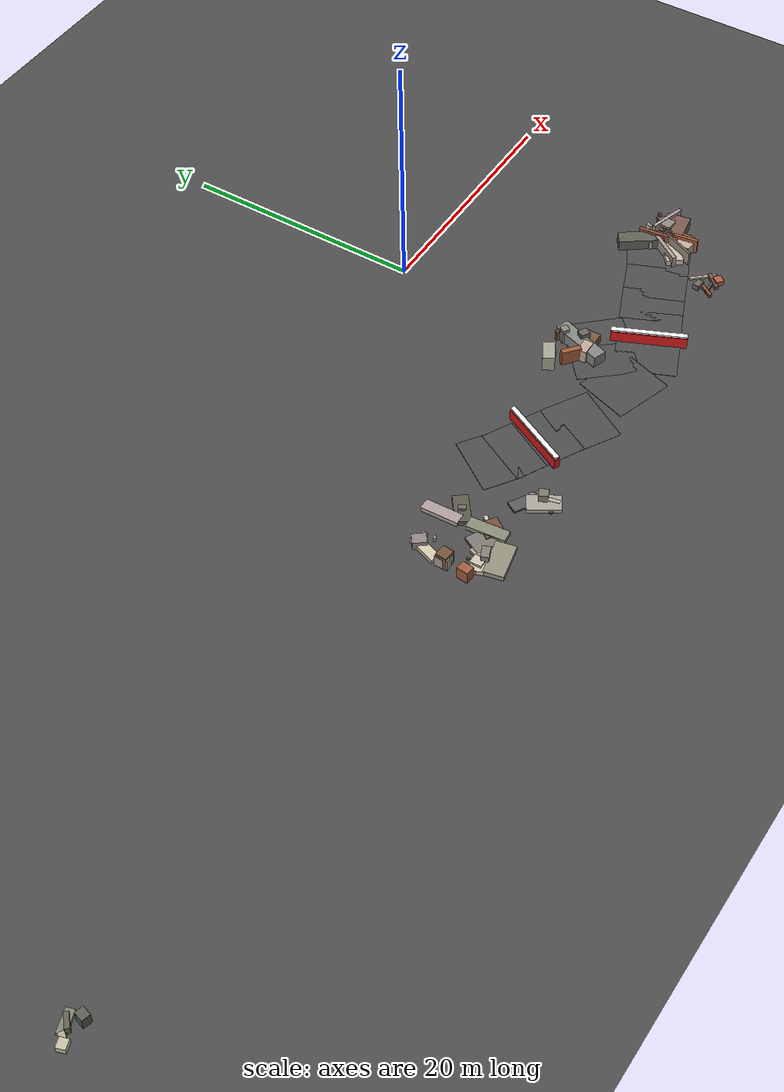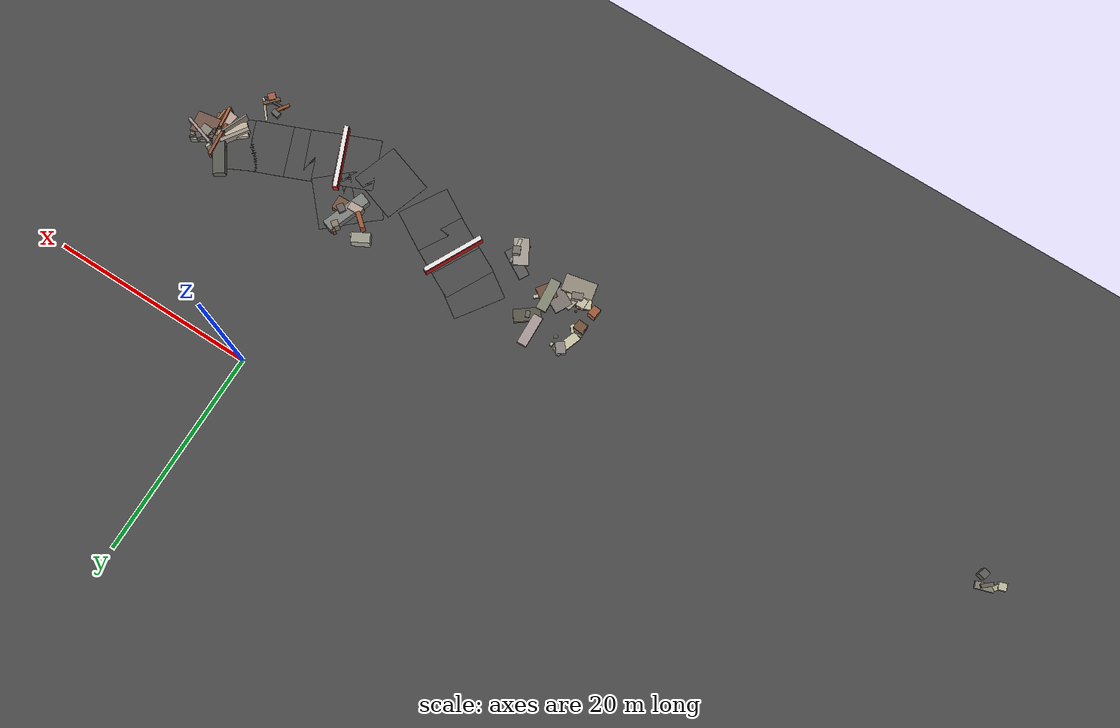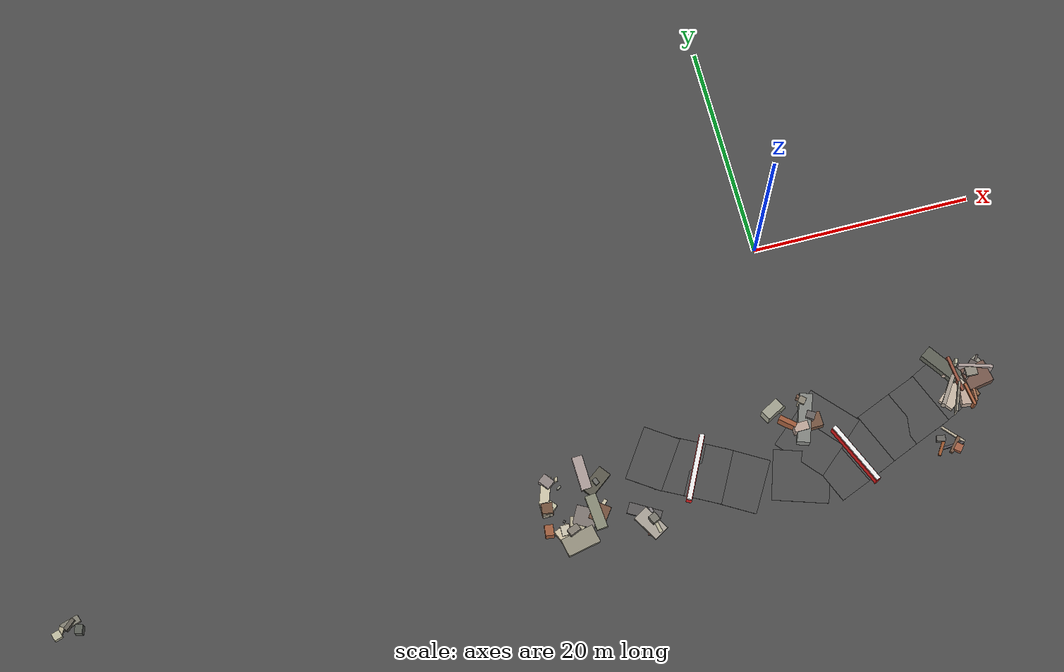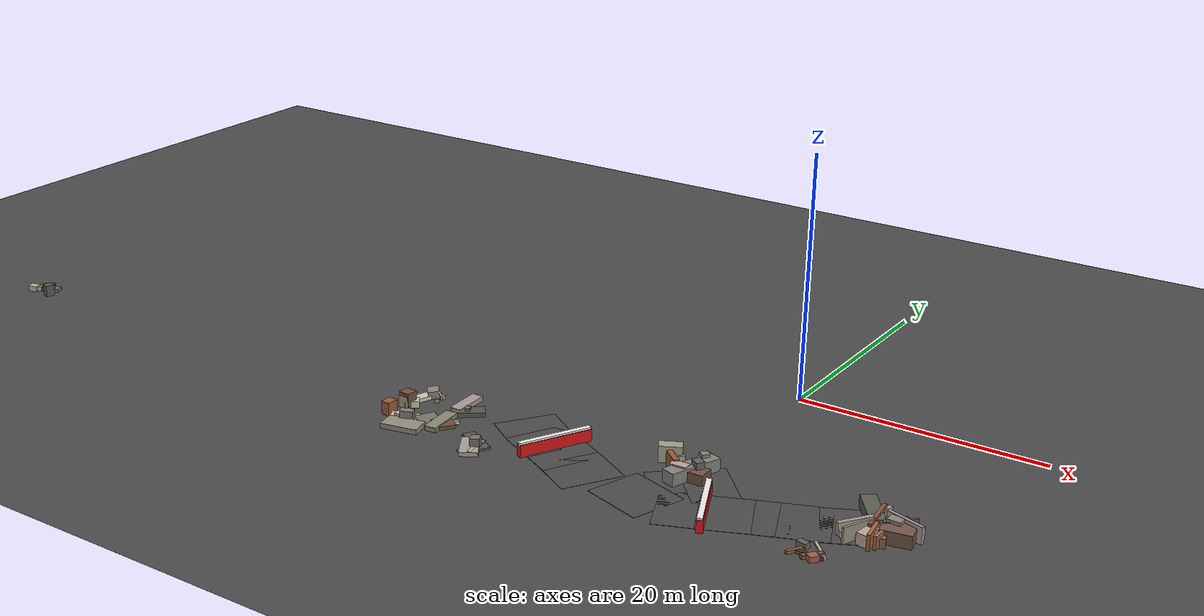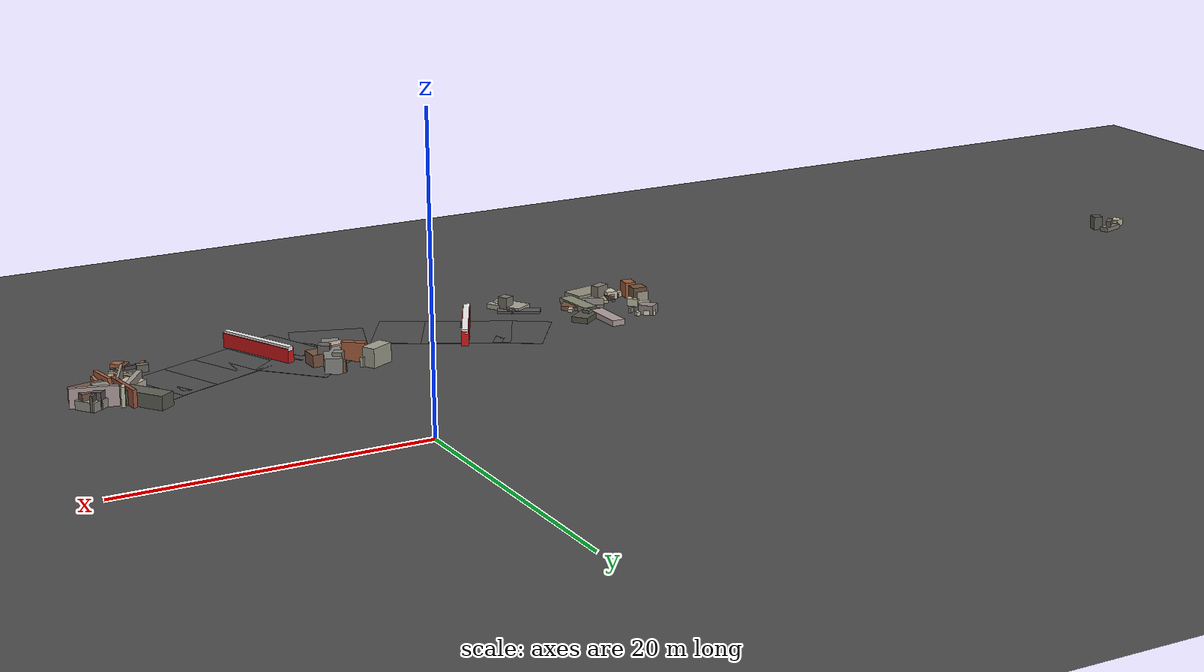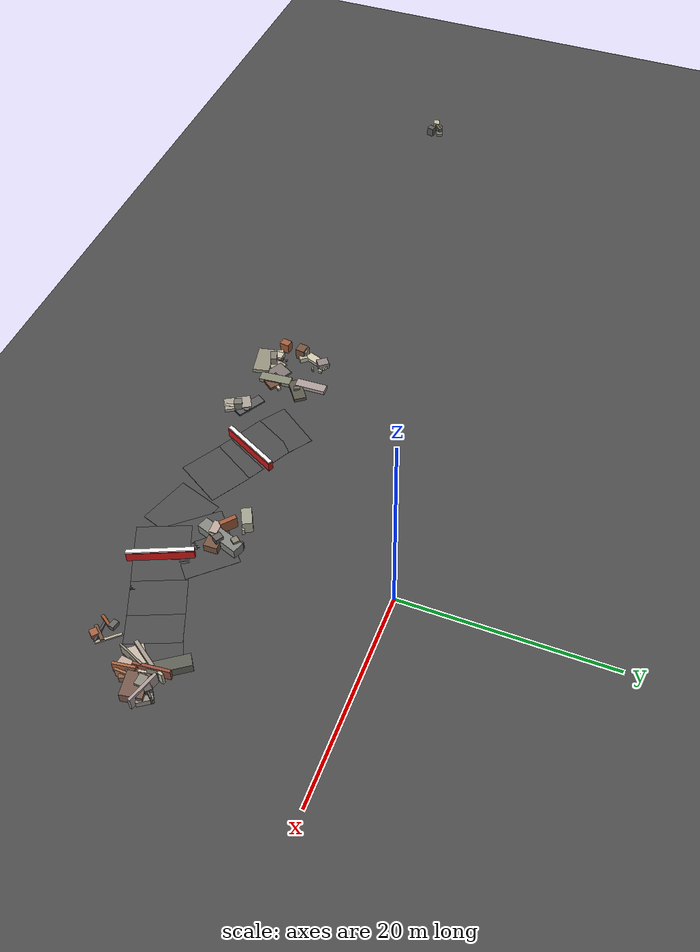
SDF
<sdf version="1.6">
 <world name="navitas_arena">
  <model name="ground_plane">
   <static>true</static>
   <link name="link">
    <collision name="collision">
     <geometry><plane><normal>0 0 1</normal><size>400 400</size></plane></geometry>
     <surface><friction><ode><mu>0.800</mu><mu2>0.800</mu2></ode></friction></surface>
    </collision>
    <visual name="visual">
     <cast_shadows>false</cast_shadows>
     <geometry><plane><normal>0 0 1</normal><size>400 400</size></plane></geometry>
     <material>
      <specular>0.04 0.04 0.04 1</specular>
      <script>
       <uri>file://media/materials/scripts/navitas_asphalt.material</uri>
       <name>Navitas/RealArenaAsphalt</name>
      </script>
     </material>
    </visual>
   </link>
  </model>
  <model name="deb_kolay_69">
   <static>true</static>
   <pose>-66.534 -19.022 0.000 0 0 0</pose>
   <link name="link">
    <collision name="col_0">
     <pose>0.385 0.794 0.359 0.000 0.000 0.717</pose>
     <geometry><box><size>1.131 0.352 0.719</size></box></geometry>
    </collision>
    <visual name="vis_0">
     <pose>0.385 0.794 0.359 0.000 0.000 0.717</pose>
     <geometry><box><size>1.131 0.352 0.719</size></box></geometry>
     <material>
      <ambient>0.37 0.36 0.32 1</ambient>
      <diffuse>0.40 0.38 0.34 1</diffuse>
      <specular>0.05 0.05 0.045 1</specular>
     </material>
    </visual>
    <collision name="col_1">
     <pose>-0.459 0.506 0.189 0.000 0.000 0.961</pose>
     <geometry><box><size>0.647 0.438 0.377</size></box></geometry>
    </collision>
    <visual name="vis_1">
     <pose>-0.459 0.506 0.189 0.000 0.000 0.961</pose>
     <geometry><box><size>0.647 0.438 0.377</size></box></geometry>
     <material>
      <ambient>0.65 0.62 0.52 1</ambient>
      <diffuse>0.70 0.67 0.56 1</diffuse>
      <specular>0.05 0.05 0.045 1</specular>
     </material>
    </visual>
    <collision name="col_2">
     <pose>-0.843 0.154 0.254 0.000 0.000 0.308</pose>
     <geometry><box><size>0.747 0.685 0.507</size></box></geometry>
    </collision>
    <visual name="vis_2">
     <pose>-0.843 0.154 0.254 0.000 0.000 0.308</pose>
     <geometry><box><size>0.747 0.685 0.507</size></box></geometry>
     <material>
      <ambient>0.70 0.70 0.59 1</ambient>
      <diffuse>0.76 0.75 0.64 1</diffuse>
      <specular>0.05 0.05 0.045 1</specular>
     </material>
    </visual>
    <collision name="col_3">
     <pose>1.124 0.130 0.493 0.000 0.000 1.282</pose>
     <geometry><box><size>0.758 0.675 0.986</size></box></geometry>
    </collision>
    <visual name="vis_3">
     <pose>1.124 0.130 0.493 0.000 0.000 1.282</pose>
     <geometry><box><size>0.758 0.675 0.986</size></box></geometry>
     <material>
      <ambient>0.33 0.34 0.31 1</ambient>
      <diffuse>0.36 0.37 0.34 1</diffuse>
      <specular>0.05 0.05 0.045 1</specular>
     </material>
    </visual>
    <collision name="col_4">
     <pose>0.436 0.968 0.167 0.000 0.000 0.304</pose>
     <geometry><box><size>1.716 0.656 0.333</size></box></geometry>
    </collision>
    <visual name="vis_4">
     <pose>0.436 0.968 0.167 0.000 0.000 0.304</pose>
     <geometry><box><size>1.716 0.656 0.333</size></box></geometry>
     <material>
      <ambient>0.47 0.46 0.41 1</ambient>
      <diffuse>0.51 0.50 0.45 1</diffuse>
      <specular>0.05 0.05 0.045 1</specular>
     </material>
    </visual>
   </link>
  </model>
  <model name="road_orta_1_1">
   <static>true</static>
   <pose>-7.198 -20.320 0.040 0 0 2.611</pose>
   <link name="link">
    <collision name="col"><geometry><box><size>4.141 5.000 0.020</size></box></geometry></collision>
    <visual name="vis">
     <geometry><box><size>4.141 5.000 0.020</size></box></geometry>
     <material>
      <specular>0.04 0.04 0.04 1</specular>
      <script>
       <uri>file://media/materials/scripts/navitas_asphalt.material</uri>
       <name>Navitas/RealArenaAsphalt</name>
      </script>
     </material>
    </visual>
   </link>
  </model>
  <model name="road_orta_1_2">
   <static>true</static>
   <pose>-9.670 -18.930 0.040 0 0 2.654</pose>
   <link name="link">
    <collision name="col"><geometry><box><size>3.332 5.000 0.020</size></box></geometry></collision>
    <visual name="vis">
     <geometry><box><size>3.332 5.000 0.020</size></box></geometry>
     <material>
      <specular>0.04 0.04 0.04 1</specular>
      <script>
       <uri>file://media/materials/scripts/navitas_asphalt.material</uri>
       <name>Navitas/RealArenaAsphalt</name>
      </script>
     </material>
    </visual>
   </link>
  </model>
  <model name="road_orta_1_3">
   <static>true</static>
   <pose>-11.906 -17.758 0.040 0 0 2.664</pose>
   <link name="link">
    <collision name="col"><geometry><box><size>3.518 5.000 0.020</size></box></geometry></collision>
    <visual name="vis">
     <geometry><box><size>3.518 5.000 0.020</size></box></geometry>
     <material>
      <specular>0.04 0.04 0.04 1</specular>
      <script>
       <uri>file://media/materials/scripts/navitas_asphalt.material</uri>
       <name>Navitas/RealArenaAsphalt</name>
      </script>
     </material>
    </visual>
   </link>
  </model>
  <model name="road_orta_1_4">
   <static>true</static>
   <pose>-14.068 -16.469 0.040 0 0 2.539</pose>
   <link name="link">
    <collision name="col"><geometry><box><size>3.324 5.000 0.020</size></box></geometry></collision>
    <visual name="vis">
     <geometry><box><size>3.324 5.000 0.020</size></box></geometry>
     <material>
      <specular>0.04 0.04 0.04 1</specular>
      <script>
       <uri>file://media/materials/scripts/navitas_asphalt.material</uri>
       <name>Navitas/RealArenaAsphalt</name>
      </script>
     </material>
    </visual>
   </link>
  </model>
  <model name="road_orta_2_0">
   <static>true</static>
   <pose>-1.967 -21.250 0.040 0 0 1.255</pose>
   <link name="link">
    <collision name="col"><geometry><box><size>4.582 5.000 0.020</size></box></geometry></collision>
    <visual name="vis">
     <geometry><box><size>4.582 5.000 0.020</size></box></geometry>
     <material>
      <specular>0.04 0.04 0.04 1</specular>
      <script>
       <uri>file://media/materials/scripts/navitas_asphalt.material</uri>
       <name>Navitas/RealArenaAsphalt</name>
      </script>
     </material>
    </visual>
   </link>
  </model>
  <model name="road_orta_2_1">
   <static>true</static>
   <pose>-0.460 -18.696 0.040 0 0 0.710</pose>
   <link name="link">
    <collision name="col"><geometry><box><size>3.367 5.000 0.020</size></box></geometry></collision>
    <visual name="vis">
     <geometry><box><size>3.367 5.000 0.020</size></box></geometry>
     <material>
      <specular>0.04 0.04 0.04 1</specular>
      <script>
       <uri>file://media/materials/scripts/navitas_asphalt.material</uri>
       <name>Navitas/RealArenaAsphalt</name>
      </script>
     </material>
    </visual>
   </link>
  </model>
  <model name="road_orta_2_2">
   <static>true</static>
   <pose>1.478 -16.984 0.040 0 0 0.736</pose>
   <link name="link">
    <collision name="col"><geometry><box><size>3.606 5.000 0.020</size></box></geometry></collision>
    <visual name="vis">
     <geometry><box><size>3.606 5.000 0.020</size></box></geometry>
     <material>
      <specular>0.04 0.04 0.04 1</specular>
      <script>
       <uri>file://media/materials/scripts/navitas_asphalt.material</uri>
       <name>Navitas/RealArenaAsphalt</name>
      </script>
     </material>
    </visual>
   </link>
  </model>
  <model name="road_orta_3_1">
   <static>true</static>
   <pose>1.786 -21.236 0.040 0 0 0.392</pose>
   <link name="link">
    <collision name="col"><geometry><box><size>3.837 5.000 0.020</size></box></geometry></collision>
    <visual name="vis">
     <geometry><box><size>3.837 5.000 0.020</size></box></geometry>
     <material>
      <specular>0.04 0.04 0.04 1</specular>
      <script>
       <uri>file://media/materials/scripts/navitas_asphalt.material</uri>
       <name>Navitas/RealArenaAsphalt</name>
      </script>
     </material>
    </visual>
   </link>
  </model>
  <model name="road_orta_3_2">
   <static>true</static>
   <pose>4.474 -20.087 0.040 0 0 0.416</pose>
   <link name="link">
    <collision name="col"><geometry><box><size>3.809 5.000 0.020</size></box></geometry></collision>
    <visual name="vis">
     <geometry><box><size>3.809 5.000 0.020</size></box></geometry>
     <material>
      <specular>0.04 0.04 0.04 1</specular>
      <script>
       <uri>file://media/materials/scripts/navitas_asphalt.material</uri>
       <name>Navitas/RealArenaAsphalt</name>
      </script>
     </material>
    </visual>
   </link>
  </model>
  <model name="road_orta_3_3">
   <static>true</static>
   <pose>6.998 -19.002 0.040 0 0 0.395</pose>
   <link name="link">
    <collision name="col"><geometry><box><size>3.487 5.000 0.020</size></box></geometry></collision>
    <visual name="vis">
     <geometry><box><size>3.487 5.000 0.020</size></box></geometry>
     <material>
      <specular>0.04 0.04 0.04 1</specular>
      <script>
       <uri>file://media/materials/scripts/navitas_asphalt.material</uri>
       <name>Navitas/RealArenaAsphalt</name>
      </script>
     </material>
    </visual>
   </link>
  </model>
  <model name="road_orta_3_4">
   <static>true</static>
   <pose>9.476 -17.986 0.040 0 0 0.383</pose>
   <link name="link">
    <collision name="col"><geometry><box><size>3.669 5.000 0.020</size></box></geometry></collision>
    <visual name="vis">
     <geometry><box><size>3.669 5.000 0.020</size></box></geometry>
     <material>
      <specular>0.04 0.04 0.04 1</specular>
      <script>
       <uri>file://media/materials/scripts/navitas_asphalt.material</uri>
       <name>Navitas/RealArenaAsphalt</name>
      </script>
     </material>
    </visual>
   </link>
  </model>
  <model name="road_orta_3_5">
   <static>true</static>
   <pose>11.907 -16.896 0.040 0 0 0.463</pose>
   <link name="link">
    <collision name="col"><geometry><box><size>3.463 5.000 0.020</size></box></geometry></collision>
    <visual name="vis">
     <geometry><box><size>3.463 5.000 0.020</size></box></geometry>
     <material>
      <specular>0.04 0.04 0.04 1</specular>
      <script>
       <uri>file://media/materials/scripts/navitas_asphalt.material</uri>
       <name>Navitas/RealArenaAsphalt</name>
      </script>
     </material>
    </visual>
   </link>
  </model>
  <model name="bar_orta_1">
   <static>true</static>
   <pose>-10.744 -18.360 0.500 0 0 4.248</pose>
   <link name="link">
    <collision name="col"><geometry><box><size>6.000 0.500 1.000</size></box></geometry></collision>
    <visual name="vis">
     <geometry><box><size>6.000 0.500 1.000</size></box></geometry>
     <material>
      <ambient>0.85 0.10 0.10 1</ambient>
      <diffuse>0.85 0.10 0.10 1</diffuse>
      <specular>0.04 0.04 0.04 1</specular>
     </material>
    </visual>
   </link>
  </model>
  <model name="bar_orta_1b">
   <static>true</static>
   <pose>-10.744 -18.360 1.000 0 0 4.248</pose>
   <link name="link">
    <collision name="col"><geometry><box><size>6.000 0.400 0.300</size></box></geometry></collision>
    <visual name="vis">
     <geometry><box><size>6.000 0.400 0.300</size></box></geometry>
     <material>
      <ambient>0.95 0.95 0.95 1</ambient>
      <diffuse>0.95 0.95 0.95 1</diffuse>
      <specular>0.04 0.04 0.04 1</specular>
     </material>
    </visual>
   </link>
  </model>
  <model name="bar_orta_3">
   <static>true</static>
   <pose>3.143 -20.675 0.500 0 0 1.978</pose>
   <link name="link">
    <collision name="col"><geometry><box><size>6.000 0.500 1.000</size></box></geometry></collision>
    <visual name="vis">
     <geometry><box><size>6.000 0.500 1.000</size></box></geometry>
     <material>
      <ambient>0.85 0.10 0.10 1</ambient>
      <diffuse>0.85 0.10 0.10 1</diffuse>
      <specular>0.04 0.04 0.04 1</specular>
     </material>
    </visual>
   </link>
  </model>
  <model name="bar_orta_3b">
   <static>true</static>
   <pose>3.143 -20.675 1.000 0 0 1.978</pose>
   <link name="link">
    <collision name="col"><geometry><box><size>6.000 0.400 0.300</size></box></geometry></collision>
    <visual name="vis">
     <geometry><box><size>6.000 0.400 0.300</size></box></geometry>
     <material>
      <ambient>0.95 0.95 0.95 1</ambient>
      <diffuse>0.95 0.95 0.95 1</diffuse>
      <specular>0.04 0.04 0.04 1</specular>
     </material>
    </visual>
   </link>
  </model>
  <model name="blk_orta_3_0_0">
   <static>true</static>
   <pose>14.276 -16.263 0.000 0 0 0</pose>
   <link name="link">
    <collision name="col_0">
     <pose>-0.991 -1.757 0.649 0.000 0.000 1.174</pose>
     <geometry><box><size>2.715 0.166 1.298</size></box></geometry>
    </collision>
    <visual name="vis_0">
     <pose>-0.991 -1.757 0.649 0.000 0.000 1.174</pose>
     <geometry><box><size>2.715 0.166 1.298</size></box></geometry>
     <material>
      <ambient>0.57 0.53 0.48 1</ambient>
      <diffuse>0.61 0.58 0.52 1</diffuse>
      <specular>0.05 0.05 0.045 1</specular>
     </material>
    </visual>
    <collision name="col_1">
     <pose>1.030 0.545 0.524 0.000 0.000 0.867</pose>
     <geometry><box><size>2.583 0.171 1.048</size></box></geometry>
    </collision>
    <visual name="vis_1">
     <pose>1.030 0.545 0.524 0.000 0.000 0.867</pose>
     <geometry><box><size>2.583 0.171 1.048</size></box></geometry>
     <material>
      <ambient>0.34 0.32 0.30 1</ambient>
      <diffuse>0.37 0.34 0.32 1</diffuse>
      <specular>0.05 0.05 0.045 1</specular>
     </material>
    </visual>
    <collision name="col_2">
     <pose>0.139 -0.960 0.420 0.000 0.000 0.569</pose>
     <geometry><box><size>1.317 0.645 0.839</size></box></geometry>
    </collision>
    <visual name="vis_2">
     <pose>0.139 -0.960 0.420 0.000 0.000 0.569</pose>
     <geometry><box><size>1.317 0.645 0.839</size></box></geometry>
     <material>
      <ambient>0.41 0.30 0.24 1</ambient>
      <diffuse>0.44 0.33 0.26 1</diffuse>
      <specular>0.05 0.05 0.045 1</specular>
     </material>
    </visual>
    <collision name="col_3">
     <pose>-1.227 0.566 0.393 0.000 0.000 2.454</pose>
     <geometry><box><size>0.602 0.409 0.786</size></box></geometry>
    </collision>
    <visual name="vis_3">
     <pose>-1.227 0.566 0.393 0.000 0.000 2.454</pose>
     <geometry><box><size>0.602 0.409 0.786</size></box></geometry>
     <material>
      <ambient>0.71 0.64 0.58 1</ambient>
      <diffuse>0.77 0.69 0.63 1</diffuse>
      <specular>0.05 0.05 0.045 1</specular>
     </material>
    </visual>
    <collision name="col_4">
     <pose>1.254 -0.239 0.516 0.000 0.000 1.739</pose>
     <geometry><box><size>2.000 2.285 1.031</size></box></geometry>
    </collision>
    <visual name="vis_4">
     <pose>1.254 -0.239 0.516 0.000 0.000 1.739</pose>
     <geometry><box><size>2.000 2.285 1.031</size></box></geometry>
     <material>
      <ambient>0.43 0.33 0.28 1</ambient>
      <diffuse>0.47 0.35 0.30 1</diffuse>
      <specular>0.05 0.05 0.045 1</specular>
     </material>
    </visual>
    <collision name="col_5">
     <pose>0.622 -0.284 0.391 0.000 0.000 0.413</pose>
     <geometry><box><size>0.488 0.356 0.782</size></box></geometry>
    </collision>
    <visual name="vis_5">
     <pose>0.622 -0.284 0.391 0.000 0.000 0.413</pose>
     <geometry><box><size>0.488 0.356 0.782</size></box></geometry>
     <material>
      <ambient>0.44 0.34 0.25 1</ambient>
      <diffuse>0.47 0.37 0.27 1</diffuse>
      <specular>0.05 0.05 0.045 1</specular>
     </material>
    </visual>
    <collision name="col_6">
     <pose>-0.211 1.364 0.671 0.000 0.000 1.222</pose>
     <geometry><box><size>0.467 0.242 1.341</size></box></geometry>
    </collision>
    <visual name="vis_6">
     <pose>-0.211 1.364 0.671 0.000 0.000 1.222</pose>
     <geometry><box><size>0.467 0.242 1.341</size></box></geometry>
     <material>
      <ambient>0.69 0.68 0.59 1</ambient>
      <diffuse>0.75 0.74 0.64 1</diffuse>
      <specular>0.05 0.05 0.045 1</specular>
     </material>
    </visual>
    <collision name="col_7">
     <pose>-1.037 -1.173 0.276 0.000 0.000 0.678</pose>
     <geometry><box><size>2.904 1.403 0.551</size></box></geometry>
    </collision>
    <visual name="vis_7">
     <pose>-1.037 -1.173 0.276 0.000 0.000 0.678</pose>
     <geometry><box><size>2.904 1.403 0.551</size></box></geometry>
     <material>
      <ambient>0.73 0.68 0.61 1</ambient>
      <diffuse>0.79 0.73 0.66 1</diffuse>
      <specular>0.05 0.05 0.045 1</specular>
     </material>
    </visual>
    <collision name="col_8">
     <pose>-1.401 1.471 0.466 0.000 0.000 2.181</pose>
     <geometry><box><size>3.732 1.156 0.933</size></box></geometry>
    </collision>
    <visual name="vis_8">
     <pose>-1.401 1.471 0.466 0.000 0.000 2.181</pose>
     <geometry><box><size>3.732 1.156 0.933</size></box></geometry>
     <material>
      <ambient>0.34 0.35 0.32 1</ambient>
      <diffuse>0.37 0.38 0.34 1</diffuse>
      <specular>0.05 0.05 0.045 1</specular>
     </material>
    </visual>
    <collision name="col_9">
     <pose>0.086 -1.825 0.619 0.000 0.000 1.714</pose>
     <geometry><box><size>2.069 0.247 1.238</size></box></geometry>
    </collision>
    <visual name="vis_9">
     <pose>0.086 -1.825 0.619 0.000 0.000 1.714</pose>
     <geometry><box><size>2.069 0.247 1.238</size></box></geometry>
     <material>
      <ambient>0.63 0.37 0.24 1</ambient>
      <diffuse>0.68 0.40 0.26 1</diffuse>
      <specular>0.05 0.05 0.045 1</specular>
     </material>
    </visual>
   </link>
  </model>
  <model name="blk_orta_3_0_3">
   <static>true</static>
   <pose>14.219 -16.608 0.000 0 0 0</pose>
   <link name="link">
    <collision name="col_0">
     <pose>-0.189 -1.370 0.468 0.000 0.000 1.437</pose>
     <geometry><box><size>1.699 0.884 0.936</size></box></geometry>
    </collision>
    <visual name="vis_0">
     <pose>-0.189 -1.370 0.468 0.000 0.000 1.437</pose>
     <geometry><box><size>1.699 0.884 0.936</size></box></geometry>
     <material>
      <ambient>0.71 0.62 0.56 1</ambient>
      <diffuse>0.76 0.67 0.61 1</diffuse>
      <specular>0.05 0.05 0.045 1</specular>
     </material>
    </visual>
    <collision name="col_1">
     <pose>1.172 0.698 0.302 0.000 0.000 0.599</pose>
     <geometry><box><size>2.528 1.462 0.603</size></box></geometry>
    </collision>
    <visual name="vis_1">
     <pose>1.172 0.698 0.302 0.000 0.000 0.599</pose>
     <geometry><box><size>2.528 1.462 0.603</size></box></geometry>
     <material>
      <ambient>0.53 0.53 0.49 1</ambient>
      <diffuse>0.58 0.57 0.53 1</diffuse>
      <specular>0.05 0.05 0.045 1</specular>
     </material>
    </visual>
    <collision name="col_2">
     <pose>-1.495 -0.533 0.510 0.000 0.000 0.974</pose>
     <geometry><box><size>2.899 0.343 1.020</size></box></geometry>
    </collision>
    <visual name="vis_2">
     <pose>-1.495 -0.533 0.510 0.000 0.000 0.974</pose>
     <geometry><box><size>2.899 0.343 1.020</size></box></geometry>
     <material>
      <ambient>0.60 0.57 0.52 1</ambient>
      <diffuse>0.65 0.61 0.56 1</diffuse>
      <specular>0.05 0.05 0.045 1</specular>
     </material>
    </visual>
    <collision name="col_3">
     <pose>1.415 0.888 0.661 0.000 0.000 -0.300</pose>
     <geometry><box><size>3.041 0.269 1.323</size></box></geometry>
    </collision>
    <visual name="vis_3">
     <pose>1.415 0.888 0.661 0.000 0.000 -0.300</pose>
     <geometry><box><size>3.041 0.269 1.323</size></box></geometry>
     <material>
      <ambient>0.63 0.58 0.56 1</ambient>
      <diffuse>0.68 0.62 0.61 1</diffuse>
      <specular>0.05 0.05 0.045 1</specular>
     </material>
    </visual>
    <collision name="col_4">
     <pose>0.887 0.518 0.647 0.000 0.000 1.524</pose>
     <geometry><box><size>0.812 1.023 1.294</size></box></geometry>
    </collision>
    <visual name="vis_4">
     <pose>0.887 0.518 0.647 0.000 0.000 1.524</pose>
     <geometry><box><size>0.812 1.023 1.294</size></box></geometry>
     <material>
      <ambient>0.51 0.50 0.46 1</ambient>
      <diffuse>0.56 0.54 0.49 1</diffuse>
      <specular>0.05 0.05 0.045 1</specular>
     </material>
    </visual>
    <collision name="col_5">
     <pose>0.915 0.864 0.550 0.000 0.000 0.818</pose>
     <geometry><box><size>1.592 0.636 1.101</size></box></geometry>
    </collision>
    <visual name="vis_5">
     <pose>0.915 0.864 0.550 0.000 0.000 0.818</pose>
     <geometry><box><size>1.592 0.636 1.101</size></box></geometry>
     <material>
      <ambient>0.36 0.34 0.32 1</ambient>
      <diffuse>0.39 0.36 0.35 1</diffuse>
      <specular>0.05 0.05 0.045 1</specular>
     </material>
    </visual>
    <collision name="col_6">
     <pose>0.845 -1.387 0.369 0.000 0.000 0.363</pose>
     <geometry><box><size>0.429 0.521 0.739</size></box></geometry>
    </collision>
    <visual name="vis_6">
     <pose>0.845 -1.387 0.369 0.000 0.000 0.363</pose>
     <geometry><box><size>0.429 0.521 0.739</size></box></geometry>
     <material>
      <ambient>0.50 0.37 0.26 1</ambient>
      <diffuse>0.54 0.39 0.28 1</diffuse>
      <specular>0.05 0.05 0.045 1</specular>
     </material>
    </visual>
    <collision name="col_7">
     <pose>-0.520 0.669 0.583 0.000 0.000 1.676</pose>
     <geometry><box><size>3.301 0.276 1.166</size></box></geometry>
    </collision>
    <visual name="vis_7">
     <pose>-0.520 0.669 0.583 0.000 0.000 1.676</pose>
     <geometry><box><size>3.301 0.276 1.166</size></box></geometry>
     <material>
      <ambient>0.56 0.31 0.23 1</ambient>
      <diffuse>0.60 0.33 0.25 1</diffuse>
      <specular>0.05 0.05 0.045 1</specular>
     </material>
    </visual>
    <collision name="col_8">
     <pose>0.645 -0.960 0.512 0.000 0.000 1.525</pose>
     <geometry><box><size>2.298 0.228 1.024</size></box></geometry>
    </collision>
    <visual name="vis_8">
     <pose>0.645 -0.960 0.512 0.000 0.000 1.525</pose>
     <geometry><box><size>2.298 0.228 1.024</size></box></geometry>
     <material>
      <ambient>0.61 0.41 0.30 1</ambient>
      <diffuse>0.66 0.44 0.32 1</diffuse>
      <specular>0.05 0.05 0.045 1</specular>
     </material>
    </visual>
   </link>
  </model>
  <model name="deb_orta_16">
   <static>true</static>
   <pose>11.632 -21.586 0.000 0 0 0</pose>
   <link name="link">
    <collision name="col_0">
     <pose>-0.019 -0.355 0.117 0.000 0.000 0.049</pose>
     <geometry><box><size>2.212 0.209 0.234</size></box></geometry>
    </collision>
    <visual name="vis_0">
     <pose>-0.019 -0.355 0.117 0.000 0.000 0.049</pose>
     <geometry><box><size>2.212 0.209 0.234</size></box></geometry>
     <material>
      <ambient>0.30 0.29 0.30 1</ambient>
      <diffuse>0.33 0.31 0.33 1</diffuse>
      <specular>0.05 0.05 0.045 1</specular>
     </material>
    </visual>
    <collision name="col_1">
     <pose>0.286 -0.340 0.151 0.000 0.000 0.845</pose>
     <geometry><box><size>1.620 0.318 0.301</size></box></geometry>
    </collision>
    <visual name="vis_1">
     <pose>0.286 -0.340 0.151 0.000 0.000 0.845</pose>
     <geometry><box><size>1.620 0.318 0.301</size></box></geometry>
     <material>
      <ambient>0.43 0.32 0.24 1</ambient>
      <diffuse>0.46 0.34 0.26 1</diffuse>
      <specular>0.05 0.05 0.045 1</specular>
     </material>
    </visual>
    <collision name="col_2">
     <pose>-0.978 -0.385 0.126 0.000 0.000 0.990</pose>
     <geometry><box><size>1.289 0.265 0.252</size></box></geometry>
    </collision>
    <visual name="vis_2">
     <pose>-0.978 -0.385 0.126 0.000 0.000 0.990</pose>
     <geometry><box><size>1.289 0.265 0.252</size></box></geometry>
     <material>
      <ambient>0.57 0.31 0.17 1</ambient>
      <diffuse>0.61 0.34 0.18 1</diffuse>
      <specular>0.05 0.05 0.045 1</specular>
     </material>
    </visual>
    <collision name="col_3">
     <pose>0.409 0.624 0.078 0.000 0.000 -0.846</pose>
     <geometry><box><size>2.338 0.217 0.156</size></box></geometry>
    </collision>
    <visual name="vis_3">
     <pose>0.409 0.624 0.078 0.000 0.000 -0.846</pose>
     <geometry><box><size>2.338 0.217 0.156</size></box></geometry>
     <material>
      <ambient>0.69 0.66 0.58 1</ambient>
      <diffuse>0.75 0.71 0.62 1</diffuse>
      <specular>0.05 0.05 0.045 1</specular>
     </material>
    </visual>
    <collision name="col_4">
     <pose>-0.797 0.472 0.238 0.000 0.000 -0.192</pose>
     <geometry><box><size>0.766 0.523 0.476</size></box></geometry>
    </collision>
    <visual name="vis_4">
     <pose>-0.797 0.472 0.238 0.000 0.000 -0.192</pose>
     <geometry><box><size>0.766 0.523 0.476</size></box></geometry>
     <material>
      <ambient>0.38 0.37 0.35 1</ambient>
      <diffuse>0.41 0.40 0.38 1</diffuse>
      <specular>0.05 0.05 0.045 1</specular>
     </material>
    </visual>
    <collision name="col_5">
     <pose>0.485 -0.695 0.222 0.000 0.000 -0.710</pose>
     <geometry><box><size>0.666 0.721 0.443</size></box></geometry>
    </collision>
    <visual name="vis_5">
     <pose>0.485 -0.695 0.222 0.000 0.000 -0.710</pose>
     <geometry><box><size>0.666 0.721 0.443</size></box></geometry>
     <material>
      <ambient>0.60 0.36 0.25 1</ambient>
      <diffuse>0.65 0.38 0.27 1</diffuse>
      <specular>0.05 0.05 0.045 1</specular>
     </material>
    </visual>
   </link>
  </model>
  <model name="deb_orta_27">
   <static>true</static>
   <pose>-21.936 -20.380 0.000 0 0 0</pose>
   <link name="link">
    <collision name="col_0">
     <pose>0.825 0.324 0.114 0.000 0.000 -0.485</pose>
     <geometry><box><size>1.935 1.730 0.228</size></box></geometry>
    </collision>
    <visual name="vis_0">
     <pose>0.825 0.324 0.114 0.000 0.000 -0.485</pose>
     <geometry><box><size>1.935 1.730 0.228</size></box></geometry>
     <material>
      <ambient>0.46 0.44 0.42 1</ambient>
      <diffuse>0.50 0.47 0.45 1</diffuse>
      <specular>0.05 0.05 0.045 1</specular>
     </material>
    </visual>
    <collision name="col_1">
     <pose>-0.494 -0.711 0.501 0.000 0.000 0.390</pose>
     <geometry><box><size>1.038 0.637 1.002</size></box></geometry>
    </collision>
    <visual name="vis_1">
     <pose>-0.494 -0.711 0.501 0.000 0.000 0.390</pose>
     <geometry><box><size>1.038 0.637 1.002</size></box></geometry>
     <material>
      <ambient>0.48 0.45 0.42 1</ambient>
      <diffuse>0.52 0.49 0.45 1</diffuse>
      <specular>0.05 0.05 0.045 1</specular>
     </material>
    </visual>
    <collision name="col_2">
     <pose>-0.059 -0.323 0.112 0.000 0.000 1.320</pose>
     <geometry><box><size>1.709 1.257 0.224</size></box></geometry>
    </collision>
    <visual name="vis_2">
     <pose>-0.059 -0.323 0.112 0.000 0.000 1.320</pose>
     <geometry><box><size>1.709 1.257 0.224</size></box></geometry>
     <material>
      <ambient>0.64 0.61 0.52 1</ambient>
      <diffuse>0.69 0.66 0.56 1</diffuse>
      <specular>0.05 0.05 0.045 1</specular>
     </material>
    </visual>
    <collision name="col_3">
     <pose>-0.807 -0.126 0.162 0.000 0.000 0.378</pose>
     <geometry><box><size>0.185 0.357 0.325</size></box></geometry>
    </collision>
    <visual name="vis_3">
     <pose>-0.807 -0.126 0.162 0.000 0.000 0.378</pose>
     <geometry><box><size>0.185 0.357 0.325</size></box></geometry>
     <material>
      <ambient>0.45 0.30 0.25 1</ambient>
      <diffuse>0.49 0.33 0.26 1</diffuse>
      <specular>0.05 0.05 0.045 1</specular>
     </material>
    </visual>
   </link>
  </model>
  <model name="deb_orta_103">
   <static>true</static>
   <pose>-19.897 -20.199 0.000 0 0 0</pose>
   <link name="link">
    <collision name="col_0">
     <pose>0.284 0.304 0.084 0.000 0.000 1.799</pose>
     <geometry><box><size>0.202 0.172 0.169</size></box></geometry>
    </collision>
    <visual name="vis_0">
     <pose>0.284 0.304 0.084 0.000 0.000 1.799</pose>
     <geometry><box><size>0.202 0.172 0.169</size></box></geometry>
     <material>
      <ambient>0.73 0.69 0.59 1</ambient>
      <diffuse>0.78 0.74 0.64 1</diffuse>
      <specular>0.05 0.05 0.045 1</specular>
     </material>
    </visual>
    <collision name="col_1">
     <pose>-0.022 -0.182 0.110 0.000 0.000 3.207</pose>
     <geometry><box><size>0.458 0.388 0.220</size></box></geometry>
    </collision>
    <visual name="vis_1">
     <pose>-0.022 -0.182 0.110 0.000 0.000 3.207</pose>
     <geometry><box><size>0.458 0.388 0.220</size></box></geometry>
     <material>
      <ambient>0.60 0.31 0.22 1</ambient>
      <diffuse>0.64 0.34 0.24 1</diffuse>
      <specular>0.05 0.05 0.045 1</specular>
     </material>
    </visual>
    <collision name="col_2">
     <pose>-0.208 0.302 0.199 0.000 0.000 1.659</pose>
     <geometry><box><size>3.148 0.986 0.398</size></box></geometry>
    </collision>
    <visual name="vis_2">
     <pose>-0.208 0.302 0.199 0.000 0.000 1.659</pose>
     <geometry><box><size>3.148 0.986 0.398</size></box></geometry>
     <material>
      <ambient>0.50 0.51 0.44 1</ambient>
      <diffuse>0.54 0.55 0.47 1</diffuse>
      <specular>0.05 0.05 0.045 1</specular>
     </material>
    </visual>
    <collision name="col_3">
     <pose>0.239 0.485 0.120 0.000 0.000 3.945</pose>
     <geometry><box><size>1.870 0.318 0.239</size></box></geometry>
    </collision>
    <visual name="vis_3">
     <pose>0.239 0.485 0.120 0.000 0.000 3.945</pose>
     <geometry><box><size>1.870 0.318 0.239</size></box></geometry>
     <material>
      <ambient>0.74 0.72 0.62 1</ambient>
      <diffuse>0.80 0.77 0.67 1</diffuse>
      <specular>0.05 0.05 0.045 1</specular>
     </material>
    </visual>
    <collision name="col_4">
     <pose>-0.241 0.127 0.086 0.000 0.000 4.226</pose>
     <geometry><box><size>1.854 0.152 0.172</size></box></geometry>
    </collision>
    <visual name="vis_4">
     <pose>-0.241 0.127 0.086 0.000 0.000 4.226</pose>
     <geometry><box><size>1.854 0.152 0.172</size></box></geometry>
     <material>
      <ambient>0.69 0.62 0.54 1</ambient>
      <diffuse>0.75 0.67 0.59 1</diffuse>
      <specular>0.05 0.05 0.045 1</specular>
     </material>
    </visual>
    <collision name="col_5">
     <pose>0.086 0.159 0.142 0.000 0.000 2.506</pose>
     <geometry><box><size>1.534 1.609 0.284</size></box></geometry>
    </collision>
    <visual name="vis_5">
     <pose>0.086 0.159 0.142 0.000 0.000 2.506</pose>
     <geometry><box><size>1.534 1.609 0.284</size></box></geometry>
     <material>
      <ambient>0.42 0.30 0.22 1</ambient>
      <diffuse>0.46 0.32 0.24 1</diffuse>
      <specular>0.05 0.05 0.045 1</specular>
     </material>
    </visual>
   </link>
  </model>
  <model name="deb_orta_147">
   <static>true</static>
   <pose>-23.797 -19.705 0.000 0 0 0</pose>
   <link name="link">
    <collision name="col_0">
     <pose>-0.710 -0.942 0.543 0.000 0.000 3.030</pose>
     <geometry><box><size>0.755 0.946 1.086</size></box></geometry>
    </collision>
    <visual name="vis_0">
     <pose>-0.710 -0.942 0.543 0.000 0.000 3.030</pose>
     <geometry><box><size>0.755 0.946 1.086</size></box></geometry>
     <material>
      <ambient>0.59 0.34 0.22 1</ambient>
      <diffuse>0.63 0.37 0.24 1</diffuse>
      <specular>0.05 0.05 0.045 1</specular>
     </material>
    </visual>
    <collision name="col_1">
     <pose>0.799 -0.292 0.073 0.000 0.000 2.494</pose>
     <geometry><box><size>0.184 0.183 0.147</size></box></geometry>
    </collision>
    <visual name="vis_1">
     <pose>0.799 -0.292 0.073 0.000 0.000 2.494</pose>
     <geometry><box><size>0.184 0.183 0.147</size></box></geometry>
     <material>
      <ambient>0.37 0.36 0.36 1</ambient>
      <diffuse>0.40 0.39 0.39 1</diffuse>
      <specular>0.05 0.05 0.045 1</specular>
     </material>
    </visual>
    <collision name="col_2">
     <pose>-0.483 0.989 0.484 0.000 0.000 1.595</pose>
     <geometry><box><size>1.099 0.863 0.968</size></box></geometry>
    </collision>
    <visual name="vis_2">
     <pose>-0.483 0.989 0.484 0.000 0.000 1.595</pose>
     <geometry><box><size>1.099 0.863 0.968</size></box></geometry>
     <material>
      <ambient>0.60 0.58 0.50 1</ambient>
      <diffuse>0.65 0.62 0.54 1</diffuse>
      <specular>0.05 0.05 0.045 1</specular>
     </material>
    </visual>
    <collision name="col_3">
     <pose>-0.408 0.955 0.617 0.000 0.000 3.033</pose>
     <geometry><box><size>0.971 0.915 1.235</size></box></geometry>
    </collision>
    <visual name="vis_3">
     <pose>-0.408 0.955 0.617 0.000 0.000 3.033</pose>
     <geometry><box><size>0.971 0.915 1.235</size></box></geometry>
     <material>
      <ambient>0.43 0.31 0.22 1</ambient>
      <diffuse>0.46 0.33 0.24 1</diffuse>
      <specular>0.05 0.05 0.045 1</specular>
     </material>
    </visual>
    <collision name="col_4">
     <pose>-0.129 1.089 0.262 0.000 0.000 3.832</pose>
     <geometry><box><size>1.141 0.786 0.524</size></box></geometry>
    </collision>
    <visual name="vis_4">
     <pose>-0.129 1.089 0.262 0.000 0.000 3.832</pose>
     <geometry><box><size>1.141 0.786 0.524</size></box></geometry>
     <material>
      <ambient>0.73 0.72 0.61 1</ambient>
      <diffuse>0.78 0.77 0.66 1</diffuse>
      <specular>0.05 0.05 0.045 1</specular>
     </material>
    </visual>
    <collision name="col_5">
     <pose>0.782 -0.801 0.126 0.000 0.000 3.069</pose>
     <geometry><box><size>0.301 0.379 0.253</size></box></geometry>
    </collision>
    <visual name="vis_5">
     <pose>0.782 -0.801 0.126 0.000 0.000 3.069</pose>
     <geometry><box><size>0.301 0.379 0.253</size></box></geometry>
     <material>
      <ambient>0.64 0.38 0.28 1</ambient>
      <diffuse>0.69 0.41 0.31 1</diffuse>
      <specular>0.05 0.05 0.045 1</specular>
     </material>
    </visual>
   </link>
  </model>
  <model name="deb_orta_153">
   <static>true</static>
   <pose>-23.079 -21.750 0.000 0 0 0</pose>
   <link name="link">
    <collision name="col_0">
     <pose>1.008 -0.305 0.208 0.000 0.000 3.347</pose>
     <geometry><box><size>3.014 1.627 0.416</size></box></geometry>
    </collision>
    <visual name="vis_0">
     <pose>1.008 -0.305 0.208 0.000 0.000 3.347</pose>
     <geometry><box><size>3.014 1.627 0.416</size></box></geometry>
     <material>
      <ambient>0.54 0.53 0.46 1</ambient>
      <diffuse>0.59 0.57 0.50 1</diffuse>
      <specular>0.05 0.05 0.045 1</specular>
     </material>
    </visual>
    <collision name="col_1">
     <pose>-0.090 0.453 0.156 0.000 0.000 2.441</pose>
     <geometry><box><size>1.728 0.732 0.312</size></box></geometry>
    </collision>
    <visual name="vis_1">
     <pose>-0.090 0.453 0.156 0.000 0.000 2.441</pose>
     <geometry><box><size>1.728 0.732 0.312</size></box></geometry>
     <material>
      <ambient>0.52 0.49 0.46 1</ambient>
      <diffuse>0.56 0.53 0.49 1</diffuse>
      <specular>0.05 0.05 0.045 1</specular>
     </material>
    </visual>
    <collision name="col_2">
     <pose>0.044 0.133 0.188 0.000 0.000 1.972</pose>
     <geometry><box><size>2.391 1.257 0.377</size></box></geometry>
    </collision>
    <visual name="vis_2">
     <pose>0.044 0.133 0.188 0.000 0.000 1.972</pose>
     <geometry><box><size>2.391 1.257 0.377</size></box></geometry>
     <material>
      <ambient>0.76 0.71 0.61 1</ambient>
      <diffuse>0.82 0.77 0.66 1</diffuse>
      <specular>0.05 0.05 0.045 1</specular>
     </material>
    </visual>
    <collision name="col_3">
     <pose>-0.020 0.881 0.281 0.000 0.000 1.568</pose>
     <geometry><box><size>0.928 0.792 0.563</size></box></geometry>
    </collision>
    <visual name="vis_3">
     <pose>-0.020 0.881 0.281 0.000 0.000 1.568</pose>
     <geometry><box><size>0.928 0.792 0.563</size></box></geometry>
     <material>
      <ambient>0.74 0.71 0.64 1</ambient>
      <diffuse>0.80 0.77 0.69 1</diffuse>
      <specular>0.05 0.05 0.045 1</specular>
     </material>
    </visual>
   </link>
  </model>
  <model name="deb_orta_192">
   <static>true</static>
   <pose>-15.841 -21.529 0.000 0 0 0</pose>
   <link name="link">
    <collision name="col_0">
     <pose>-0.024 -0.078 0.101 0.000 0.000 0.016</pose>
     <geometry><box><size>0.326 0.256 0.202</size></box></geometry>
    </collision>
    <visual name="vis_0">
     <pose>-0.024 -0.078 0.101 0.000 0.000 0.016</pose>
     <geometry><box><size>0.326 0.256 0.202</size></box></geometry>
     <material>
      <ambient>0.45 0.46 0.41 1</ambient>
      <diffuse>0.49 0.49 0.44 1</diffuse>
      <specular>0.05 0.05 0.045 1</specular>
     </material>
    </visual>
    <collision name="col_1">
     <pose>-0.188 0.589 0.086 0.000 0.000 2.612</pose>
     <geometry><box><size>2.970 1.024 0.172</size></box></geometry>
    </collision>
    <visual name="vis_1">
     <pose>-0.188 0.589 0.086 0.000 0.000 2.612</pose>
     <geometry><box><size>2.970 1.024 0.172</size></box></geometry>
     <material>
      <ambient>0.33 0.32 0.32 1</ambient>
      <diffuse>0.36 0.35 0.35 1</diffuse>
      <specular>0.05 0.05 0.045 1</specular>
     </material>
    </visual>
    <collision name="col_2">
     <pose>-0.090 -0.549 0.095 0.000 0.000 1.342</pose>
     <geometry><box><size>1.915 0.283 0.191</size></box></geometry>
    </collision>
    <visual name="vis_2">
     <pose>-0.090 -0.549 0.095 0.000 0.000 1.342</pose>
     <geometry><box><size>1.915 0.283 0.191</size></box></geometry>
     <material>
      <ambient>0.48 0.33 0.27 1</ambient>
      <diffuse>0.51 0.36 0.30 1</diffuse>
      <specular>0.05 0.05 0.045 1</specular>
     </material>
    </visual>
    <collision name="col_3">
     <pose>0.413 0.596 0.136 0.000 0.000 1.856</pose>
     <geometry><box><size>0.478 0.274 0.271</size></box></geometry>
    </collision>
    <visual name="vis_3">
     <pose>0.413 0.596 0.136 0.000 0.000 1.856</pose>
     <geometry><box><size>0.478 0.274 0.271</size></box></geometry>
     <material>
      <ambient>0.49 0.48 0.48 1</ambient>
      <diffuse>0.53 0.51 0.52 1</diffuse>
      <specular>0.05 0.05 0.045 1</specular>
     </material>
    </visual>
   </link>
  </model>
  <model name="deb_orta_204">
   <static>true</static>
   <pose>-23.309 -16.688 0.000 0 0 0</pose>
   <link name="link">
    <collision name="col_0">
     <pose>0.546 0.489 0.137 0.000 0.000 1.487</pose>
     <geometry><box><size>0.366 0.264 0.275</size></box></geometry>
    </collision>
    <visual name="vis_0">
     <pose>0.546 0.489 0.137 0.000 0.000 1.487</pose>
     <geometry><box><size>0.366 0.264 0.275</size></box></geometry>
     <material>
      <ambient>0.71 0.68 0.57 1</ambient>
      <diffuse>0.76 0.73 0.62 1</diffuse>
      <specular>0.05 0.05 0.045 1</specular>
     </material>
    </visual>
    <collision name="col_1">
     <pose>-0.605 -0.246 0.163 0.000 0.000 1.230</pose>
     <geometry><box><size>2.524 0.843 0.327</size></box></geometry>
    </collision>
    <visual name="vis_1">
     <pose>-0.605 -0.246 0.163 0.000 0.000 1.230</pose>
     <geometry><box><size>2.524 0.843 0.327</size></box></geometry>
     <material>
      <ambient>0.76 0.73 0.63 1</ambient>
      <diffuse>0.82 0.79 0.68 1</diffuse>
      <specular>0.05 0.05 0.045 1</specular>
     </material>
    </visual>
    <collision name="col_2">
     <pose>-0.321 0.424 0.329 0.000 0.000 2.231</pose>
     <geometry><box><size>1.104 0.897 0.659</size></box></geometry>
    </collision>
    <visual name="vis_2">
     <pose>-0.321 0.424 0.329 0.000 0.000 2.231</pose>
     <geometry><box><size>1.104 0.897 0.659</size></box></geometry>
     <material>
      <ambient>0.53 0.49 0.48 1</ambient>
      <diffuse>0.57 0.53 0.52 1</diffuse>
      <specular>0.05 0.05 0.045 1</specular>
     </material>
    </visual>
    <collision name="col_3">
     <pose>0.600 -0.313 0.165 0.000 0.000 3.700</pose>
     <geometry><box><size>0.388 0.175 0.330</size></box></geometry>
    </collision>
    <visual name="vis_3">
     <pose>0.600 -0.313 0.165 0.000 0.000 3.700</pose>
     <geometry><box><size>0.388 0.175 0.330</size></box></geometry>
     <material>
      <ambient>0.52 0.51 0.49 1</ambient>
      <diffuse>0.56 0.56 0.52 1</diffuse>
      <specular>0.05 0.05 0.045 1</specular>
     </material>
    </visual>
   </link>
  </model>
  <model name="deb_orta_225">
   <static>true</static>
   <pose>-14.842 -21.307 0.000 0 0 0</pose>
   <link name="link">
    <collision name="col_0">
     <pose>-0.455 -0.975 0.181 0.000 0.000 1.780</pose>
     <geometry><box><size>1.592 0.315 0.363</size></box></geometry>
    </collision>
    <visual name="vis_0">
     <pose>-0.455 -0.975 0.181 0.000 0.000 1.780</pose>
     <geometry><box><size>1.592 0.315 0.363</size></box></geometry>
     <material>
      <ambient>0.68 0.66 0.56 1</ambient>
      <diffuse>0.73 0.71 0.61 1</diffuse>
      <specular>0.05 0.05 0.045 1</specular>
     </material>
    </visual>
    <collision name="col_1">
     <pose>-0.928 -0.761 0.171 0.000 0.000 2.104</pose>
     <geometry><box><size>2.611 1.461 0.341</size></box></geometry>
    </collision>
    <visual name="vis_1">
     <pose>-0.928 -0.761 0.171 0.000 0.000 2.104</pose>
     <geometry><box><size>2.611 1.461 0.341</size></box></geometry>
     <material>
      <ambient>0.62 0.59 0.55 1</ambient>
      <diffuse>0.67 0.64 0.60 1</diffuse>
      <specular>0.05 0.05 0.045 1</specular>
     </material>
    </visual>
    <collision name="col_2">
     <pose>-1.082 0.297 0.133 0.000 0.000 1.913</pose>
     <geometry><box><size>0.386 0.198 0.266</size></box></geometry>
    </collision>
    <visual name="vis_2">
     <pose>-1.082 0.297 0.133 0.000 0.000 1.913</pose>
     <geometry><box><size>0.386 0.198 0.266</size></box></geometry>
     <material>
      <ambient>0.76 0.70 0.60 1</ambient>
      <diffuse>0.82 0.75 0.65 1</diffuse>
      <specular>0.05 0.05 0.045 1</specular>
     </material>
    </visual>
    <collision name="col_3">
     <pose>-0.601 -0.521 0.492 0.000 0.000 1.980</pose>
     <geometry><box><size>0.744 0.725 0.983</size></box></geometry>
    </collision>
    <visual name="vis_3">
     <pose>-0.601 -0.521 0.492 0.000 0.000 1.980</pose>
     <geometry><box><size>0.744 0.725 0.983</size></box></geometry>
     <material>
      <ambient>0.44 0.43 0.40 1</ambient>
      <diffuse>0.48 0.47 0.43 1</diffuse>
      <specular>0.05 0.05 0.045 1</specular>
     </material>
    </visual>
   </link>
  </model>
  <model name="deb_orta_284">
   <static>true</static>
   <pose>-19.712 -16.736 0.000 0 0 0</pose>
   <link name="link">
    <collision name="col_0">
     <pose>0.279 -0.556 0.196 0.000 0.000 3.793</pose>
     <geometry><box><size>2.549 1.205 0.391</size></box></geometry>
    </collision>
    <visual name="vis_0">
     <pose>0.279 -0.556 0.196 0.000 0.000 3.793</pose>
     <geometry><box><size>2.549 1.205 0.391</size></box></geometry>
     <material>
      <ambient>0.34 0.33 0.27 1</ambient>
      <diffuse>0.36 0.35 0.30 1</diffuse>
      <specular>0.05 0.05 0.045 1</specular>
     </material>
    </visual>
    <collision name="col_1">
     <pose>-0.717 0.524 0.201 0.000 0.000 1.602</pose>
     <geometry><box><size>3.058 0.934 0.402</size></box></geometry>
    </collision>
    <visual name="vis_1">
     <pose>-0.717 0.524 0.201 0.000 0.000 1.602</pose>
     <geometry><box><size>3.058 0.934 0.402</size></box></geometry>
     <material>
      <ambient>0.63 0.58 0.57 1</ambient>
      <diffuse>0.68 0.62 0.61 1</diffuse>
      <specular>0.05 0.05 0.045 1</specular>
     </material>
    </visual>
    <collision name="col_2">
     <pose>0.247 -0.593 0.305 0.000 0.000 2.029</pose>
     <geometry><box><size>0.589 0.402 0.609</size></box></geometry>
    </collision>
    <visual name="vis_2">
     <pose>0.247 -0.593 0.305 0.000 0.000 2.029</pose>
     <geometry><box><size>0.589 0.402 0.609</size></box></geometry>
     <material>
      <ambient>0.39 0.39 0.37 1</ambient>
      <diffuse>0.42 0.42 0.40 1</diffuse>
      <specular>0.05 0.05 0.045 1</specular>
     </material>
    </visual>
    <collision name="col_3">
     <pose>0.462 -0.735 0.139 0.000 0.000 2.160</pose>
     <geometry><box><size>0.512 0.306 0.279</size></box></geometry>
    </collision>
    <visual name="vis_3">
     <pose>0.462 -0.735 0.139 0.000 0.000 2.160</pose>
     <geometry><box><size>0.512 0.306 0.279</size></box></geometry>
     <material>
      <ambient>0.60 0.60 0.55 1</ambient>
      <diffuse>0.65 0.65 0.59 1</diffuse>
      <specular>0.05 0.05 0.045 1</specular>
     </material>
    </visual>
   </link>
  </model>
  <model name="chic_orta_0">
   <static>true</static>
   <pose>-1.267 -16.013 0.000 0 0 0</pose>
   <link name="link">
    <collision name="col_0">
     <pose>-0.646 0.954 0.326 0.000 0.000 0.541</pose>
     <geometry><box><size>0.557 0.253 0.652</size></box></geometry>
    </collision>
    <visual name="vis_0">
     <pose>-0.646 0.954 0.326 0.000 0.000 0.541</pose>
     <geometry><box><size>0.557 0.253 0.652</size></box></geometry>
     <material>
      <ambient>0.61 0.62 0.53 1</ambient>
      <diffuse>0.66 0.67 0.58 1</diffuse>
      <specular>0.05 0.05 0.045 1</specular>
     </material>
    </visual>
    <collision name="col_1">
     <pose>1.492 -0.433 0.714 0.000 0.000 -0.579</pose>
     <geometry><box><size>0.787 0.668 1.429</size></box></geometry>
    </collision>
    <visual name="vis_1">
     <pose>1.492 -0.433 0.714 0.000 0.000 -0.579</pose>
     <geometry><box><size>0.787 0.668 1.429</size></box></geometry>
     <material>
      <ambient>0.38 0.36 0.35 1</ambient>
      <diffuse>0.41 0.39 0.38 1</diffuse>
      <specular>0.05 0.05 0.045 1</specular>
     </material>
    </visual>
    <collision name="col_2">
     <pose>-1.564 0.953 0.652 0.000 0.000 0.489</pose>
     <geometry><box><size>1.767 0.958 1.305</size></box></geometry>
    </collision>
    <visual name="vis_2">
     <pose>-1.564 0.953 0.652 0.000 0.000 0.489</pose>
     <geometry><box><size>1.767 0.958 1.305</size></box></geometry>
     <material>
      <ambient>0.59 0.59 0.53 1</ambient>
      <diffuse>0.64 0.64 0.57 1</diffuse>
      <specular>0.05 0.05 0.045 1</specular>
     </material>
    </visual>
    <collision name="col_3">
     <pose>-0.579 -0.447 0.641 0.000 0.000 -0.709</pose>
     <geometry><box><size>1.609 0.440 1.281</size></box></geometry>
    </collision>
    <visual name="vis_3">
     <pose>-0.579 -0.447 0.641 0.000 0.000 -0.709</pose>
     <geometry><box><size>1.609 0.440 1.281</size></box></geometry>
     <material>
      <ambient>0.59 0.34 0.21 1</ambient>
      <diffuse>0.63 0.36 0.23 1</diffuse>
      <specular>0.05 0.05 0.045 1</specular>
     </material>
    </visual>
    <collision name="col_4">
     <pose>1.170 1.088 0.653 0.000 0.000 0.900</pose>
     <geometry><box><size>0.631 0.619 1.306</size></box></geometry>
    </collision>
    <visual name="vis_4">
     <pose>1.170 1.088 0.653 0.000 0.000 0.900</pose>
     <geometry><box><size>0.631 0.619 1.306</size></box></geometry>
     <material>
      <ambient>0.51 0.48 0.43 1</ambient>
      <diffuse>0.55 0.52 0.46 1</diffuse>
      <specular>0.05 0.05 0.045 1</specular>
     </material>
    </visual>
    <collision name="col_5">
     <pose>0.983 -0.460 0.528 0.000 0.000 1.234</pose>
     <geometry><box><size>4.453 1.139 1.056</size></box></geometry>
    </collision>
    <visual name="vis_5">
     <pose>0.983 -0.460 0.528 0.000 0.000 1.234</pose>
     <geometry><box><size>4.453 1.139 1.056</size></box></geometry>
     <material>
      <ambient>0.48 0.49 0.47 1</ambient>
      <diffuse>0.52 0.53 0.51 1</diffuse>
      <specular>0.05 0.05 0.045 1</specular>
     </material>
    </visual>
    <collision name="col_6">
     <pose>1.055 1.569 0.421 0.000 0.000 -0.584</pose>
     <geometry><box><size>0.450 0.291 0.843</size></box></geometry>
    </collision>
    <visual name="vis_6">
     <pose>1.055 1.569 0.421 0.000 0.000 -0.584</pose>
     <geometry><box><size>0.450 0.291 0.843</size></box></geometry>
     <material>
      <ambient>0.44 0.32 0.26 1</ambient>
      <diffuse>0.47 0.35 0.28 1</diffuse>
      <specular>0.05 0.05 0.045 1</specular>
     </material>
    </visual>
    <collision name="col_7">
     <pose>0.430 -1.168 0.580 0.000 0.000 0.024</pose>
     <geometry><box><size>1.305 0.772 1.159</size></box></geometry>
    </collision>
    <visual name="vis_7">
     <pose>0.430 -1.168 0.580 0.000 0.000 0.024</pose>
     <geometry><box><size>1.305 0.772 1.159</size></box></geometry>
     <material>
      <ambient>0.70 0.61 0.56 1</ambient>
      <diffuse>0.75 0.66 0.61 1</diffuse>
      <specular>0.05 0.05 0.045 1</specular>
     </material>
    </visual>
    <collision name="col_8">
     <pose>1.474 -0.826 0.433 0.000 0.000 0.024</pose>
     <geometry><box><size>1.875 1.307 0.866</size></box></geometry>
    </collision>
    <visual name="vis_8">
     <pose>1.474 -0.826 0.433 0.000 0.000 0.024</pose>
     <geometry><box><size>1.875 1.307 0.866</size></box></geometry>
     <material>
      <ambient>0.44 0.32 0.24 1</ambient>
      <diffuse>0.47 0.34 0.26 1</diffuse>
      <specular>0.05 0.05 0.045 1</specular>
     </material>
    </visual>
   </link>
  </model>
 </world>
</sdf>
